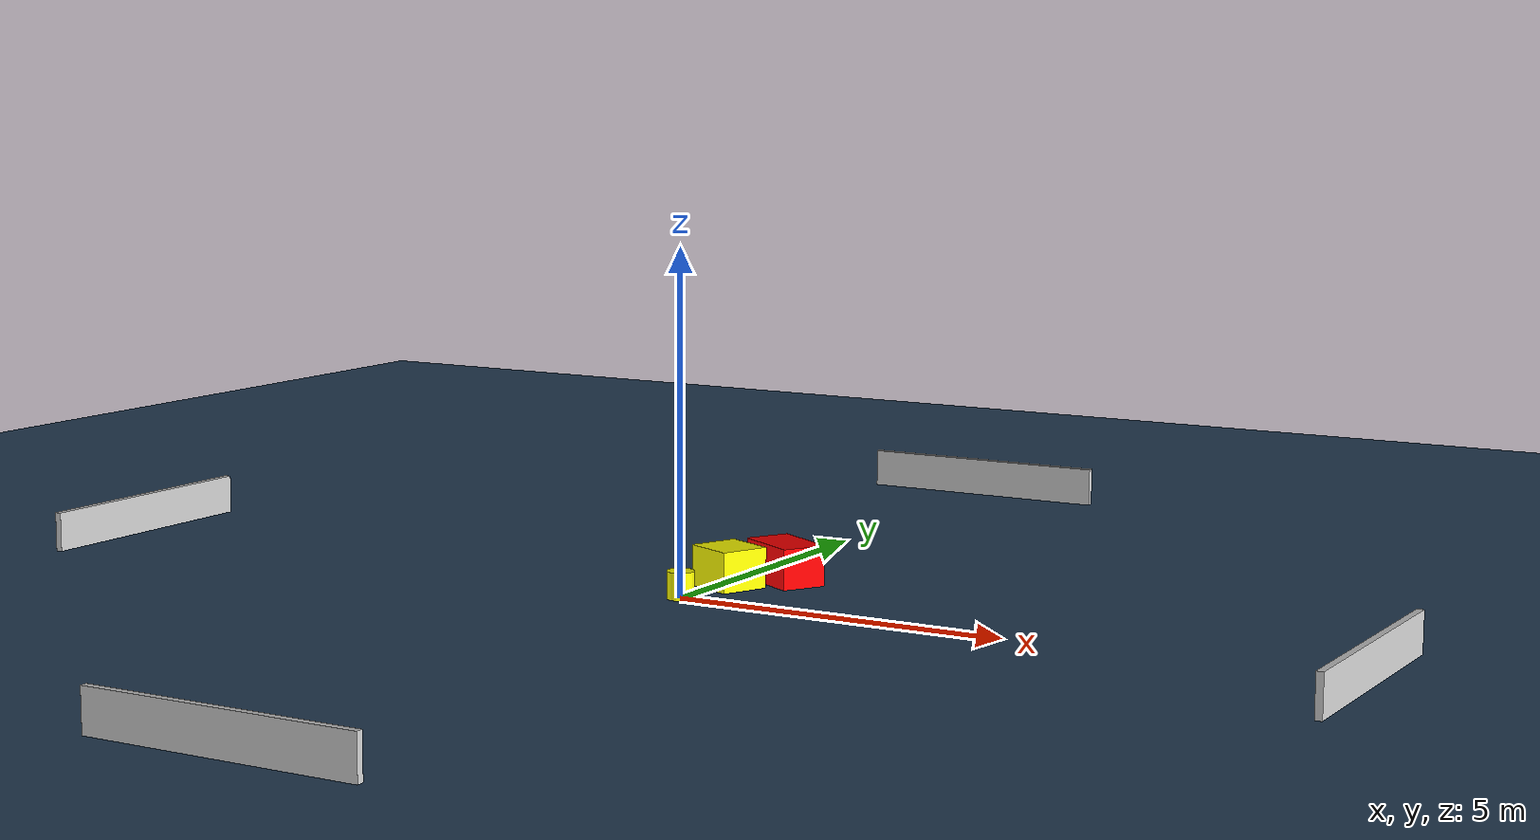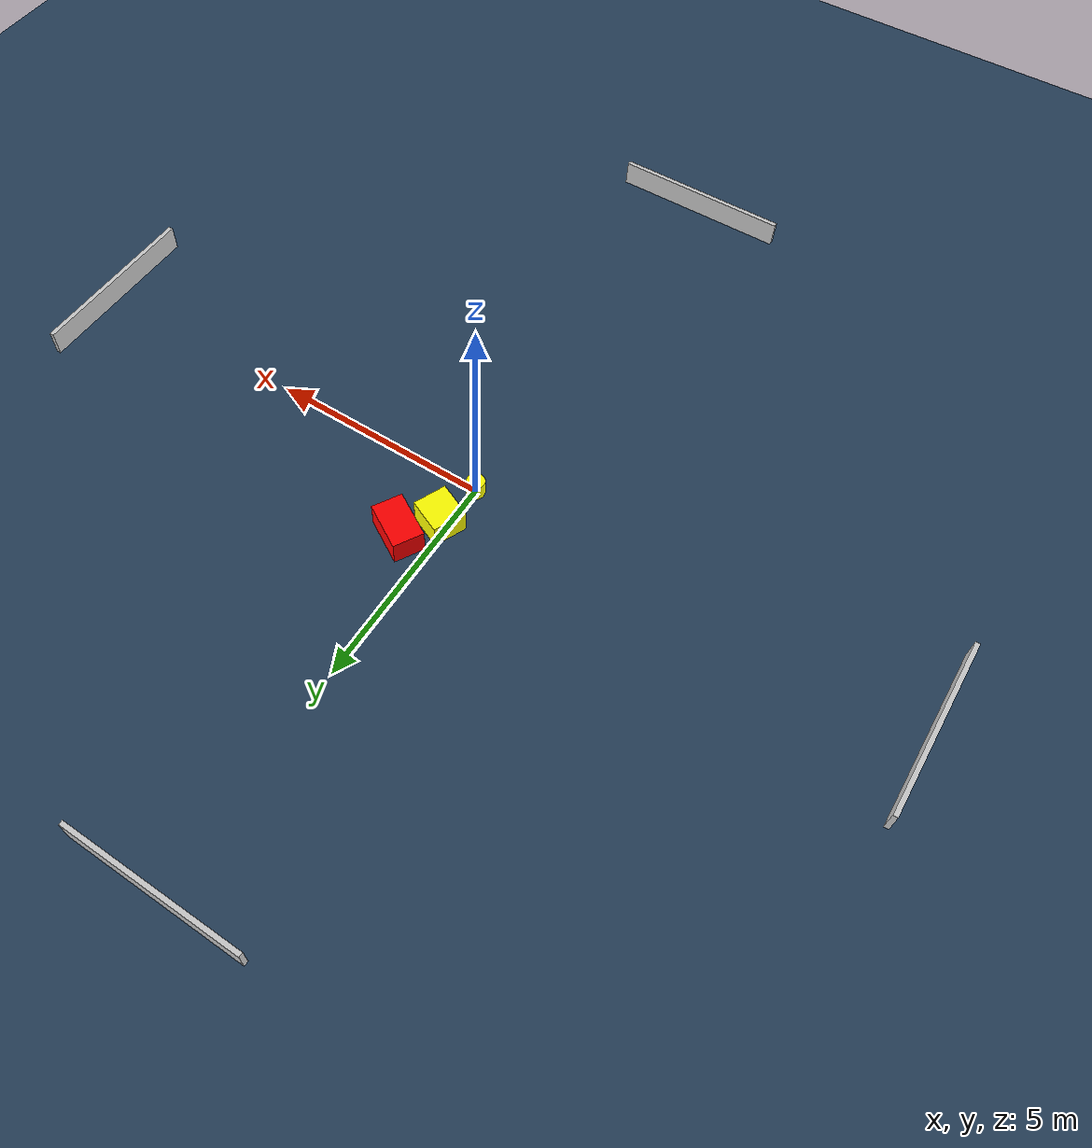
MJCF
<?xml version="1.0" ?>
<mujoco model="generated_environment">
  <option timestep="0.01" integrator="RK4" cone="elliptic"/>
  <default>
    <geom density="1"/>
  </default>
  <asset>
    <texture builtin="gradient" height="3072" name="skybox" rgb1="0.3 0.5 0.7" rgb2="0 0 0" type="skybox" width="512"/>
    <texture builtin="checker" height="300" name="groundplane" rgb1="0.2 0.3 0.4" rgb2="0.1 0.2 0.3" type="2d" width="300"/>
    <material name="groundplane" reflectance="0.2" texrepeat="5 5" texture="groundplane"/>
  </asset>
  <worldbody>
    <light dir="0 0 -1" directional="true" pos="0 0 1.5"/>
    <geom condim="3" friction="0.5 0.005 0.001" material="groundplane" name="floor" pos="0 0 0" size="0 0 0.05" type="plane"/>
    <body name="walls">
      <geom name="wall_1" condim="4" pos="-10.0 0.0 0.3" rgba="0.800000011920929 0.800000011920929 0.800000011920929 1.0" size="0.05 2.0 0.3" type="box"/>
      <geom name="wall_2" condim="4" pos="10.0 0.0 0.3" rgba="0.800000011920929 0.800000011920929 0.800000011920929 1.0" size="0.05 2.0 0.3" type="box"/>
      <geom name="wall_3" condim="4" pos="0.0 -10.0 0.3" rgba="0.800000011920929 0.800000011920929 0.800000011920929 1.0" size="2.0 0.05 0.3" type="box"/>
      <geom name="wall_4" condim="4" pos="0.0 10.0 0.3" rgba="0.800000011920929 0.800000011920929 0.800000011920929 1.0" size="2.0 0.05 0.3" type="box"/>
    </body>
    <body name="robot">
      <joint name="joint_x" type="slide" pos="0 0 0" axis="1 0 0"/>
      <joint name="joint_y" type="slide" pos="0 0 0" axis="0 1 0"/>
      <geom name="robot" type="cylinder" pos="0.0 0.0 0.2" size="0.2 0.2 0.0" mass="5.0" friction="1.0 0.005 0.0001" condim="4" rgba="1.0 1.0 0.0 1.0"/>
    </body>
    <body name="obstacle_1_movable">
      <geom name="obstacle_1_movable" condim="4" pos="0.17545305015797039 1.061422697781115 0.3" euler="0 0 156.27422526197216" friction="0.0 0.005 0.001" rgba="1.0 1.0 0.0 1.0" size="0.39129508075140285 0.3752505172910356 0.3" type="box" mass="0.1"/>
      <joint type="free"/>
    </body>
    <body name="obstacle_2_static">
      <geom name="obstacle_2_static" condim="4" pos="0.7192715814756074 1.7651781683516086 0.3" euler="0 0 239.7972141996305" friction="0.0 0.005 0.001" rgba="1.0 0.0 0.0 1.0" size="0.3428271812423833 0.5304714712743718 0.3" type="box"/>
    </body>
  </worldbody>
  <actuator>
    <motor name="actuator_x" joint="joint_x" gear="1" ctrlrange="-1 1"/>
    <motor name="actuator_y" joint="joint_y" gear="1" ctrlrange="-1 1"/>
  </actuator>
</mujoco>
